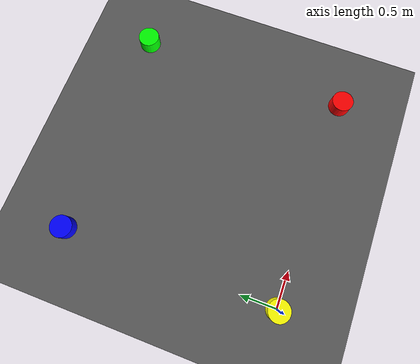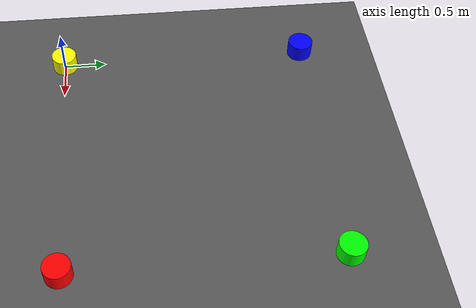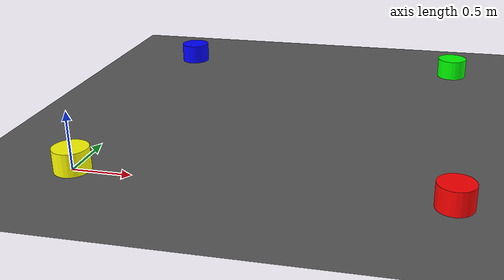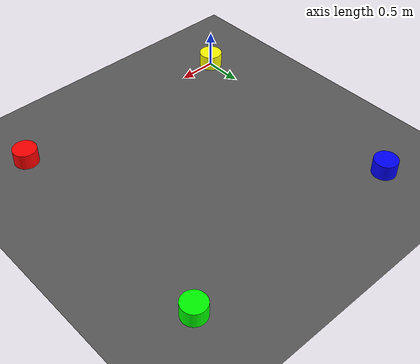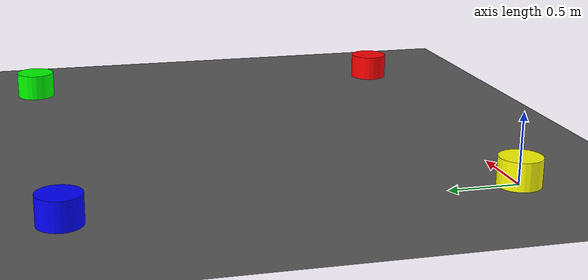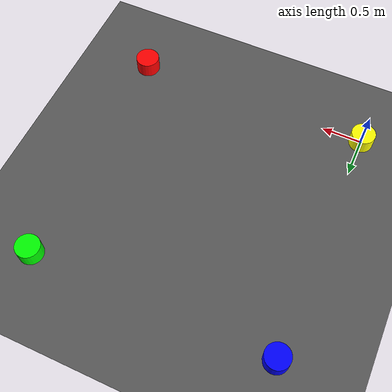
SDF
<sdf version="1.7">
 <world name="quadcopter_world">
  <physics type="ode"/>
  <plugin filename="gz-sim-physics-system" name="gz::sim::systems::Physics"/>
  <plugin filename="gz-sim-user-commands-system" name="gz::sim::systems::UserCommands"/>
  <plugin filename="gz-sim-scene-broadcaster-system" name="gz::sim::systems::SceneBroadcaster"/>
  <plugin filename="gz-sim-sensors-system" name="gz::sim::systems::Sensors">
   <render_engine>ogre2</render_engine>
  </plugin>
  <scene><ambient>0.4 0.4 0.4 1</ambient><background>0.7 0.85 1 1</background><shadows>true</shadows></scene>
  <light type="directional" name="sun">
   <pose>0 0 50 0 0 0</pose>
   <diffuse>1 1 1 1</diffuse>
   <specular>1 1 1 1</specular>
   <attenuation>
    <range>1000</range>
    <constant>0.9</constant>
    <linear>0.01</linear>
    <quadratic>0.001</quadratic>
   </attenuation>
   <direction>-0.4 -0.2 -1</direction>
  </light>
  <model name="ground_plane">
   <static>true</static>
   <link name="link">
    <collision name="collision">
     <geometry><plane><normal>0 0 1</normal><size>200 200</size></plane></geometry>
    </collision>
    <visual name="visual">
     <geometry><plane><normal>0 0 1</normal><size>200 200</size></plane></geometry>
     <material><ambient>0.3 0.3 0.3 1</ambient><diffuse>0.35 0.35 0.35 1</diffuse></material>
    </visual>
   </link>
  </model>
  <model name="wp1">
   <static>true</static>
   <pose>3 0 0.1 0 0 0</pose>
   <link name="link">
    <visual name="visual">
     <geometry><cylinder><radius>0.15</radius><length>0.2</length></cylinder></geometry>
     <material><ambient>1 0 0 1</ambient><diffuse>1 0 0 1</diffuse></material>
    </visual>
   </link>
  </model>
  <model name="wp2">
   <static>true</static>
   <pose>3 3 0.1 0 0 0</pose>
   <link name="link">
    <visual name="visual">
     <geometry><cylinder><radius>0.15</radius><length>0.2</length></cylinder></geometry>
     <material><ambient>0 1 0 1</ambient><diffuse>0 1 0 1</diffuse></material>
    </visual>
   </link>
  </model>
  <model name="wp3">
   <static>true</static>
   <pose>0 3 0.1 0 0 0</pose>
   <link name="link">
    <visual name="visual">
     <geometry><cylinder><radius>0.15</radius><length>0.2</length></cylinder></geometry>
     <material><ambient>0 0 1 1</ambient><diffuse>0 0 1 1</diffuse></material>
    </visual>
   </link>
  </model>
  <model name="wp4">
   <static>true</static>
   <pose>0 0 0.1 0 0 0</pose>
   <link name="link">
    <visual name="visual">
     <geometry><cylinder><radius>0.15</radius><length>0.2</length></cylinder></geometry>
     <material><ambient>1 1 0 1</ambient><diffuse>1 1 0 1</diffuse></material>
    </visual>
   </link>
  </model>
 </world>
</sdf>
